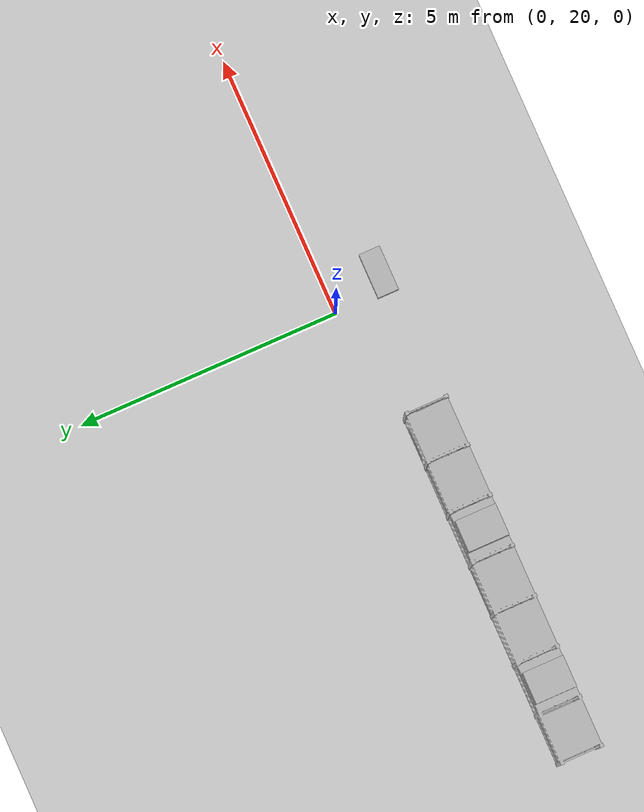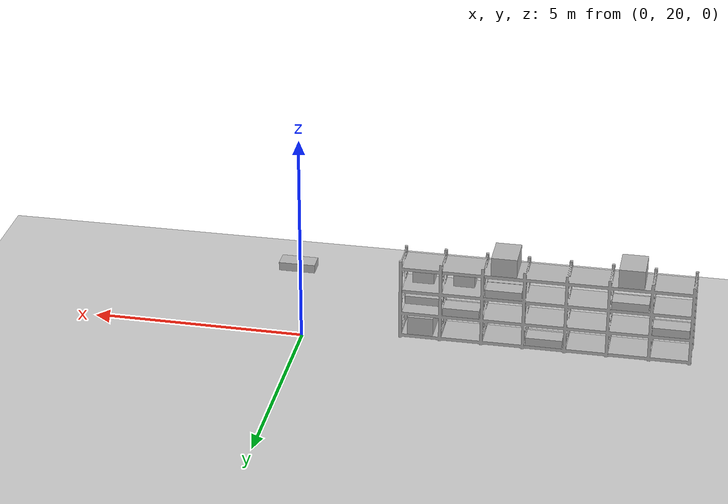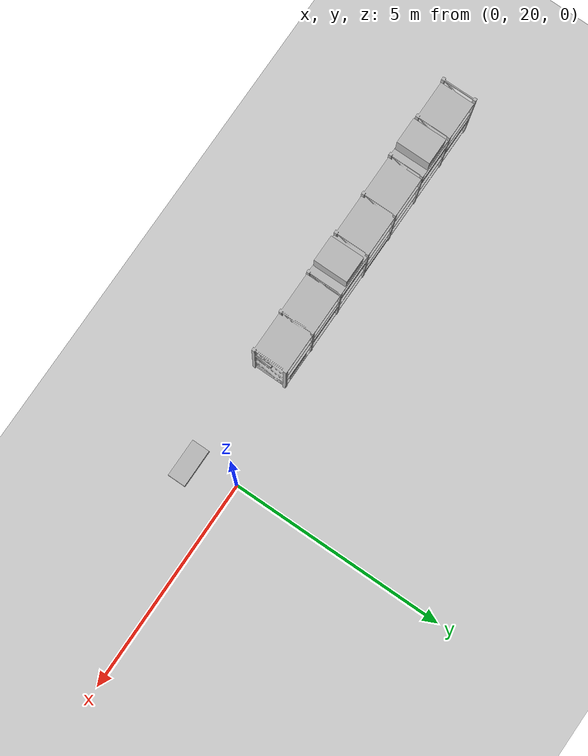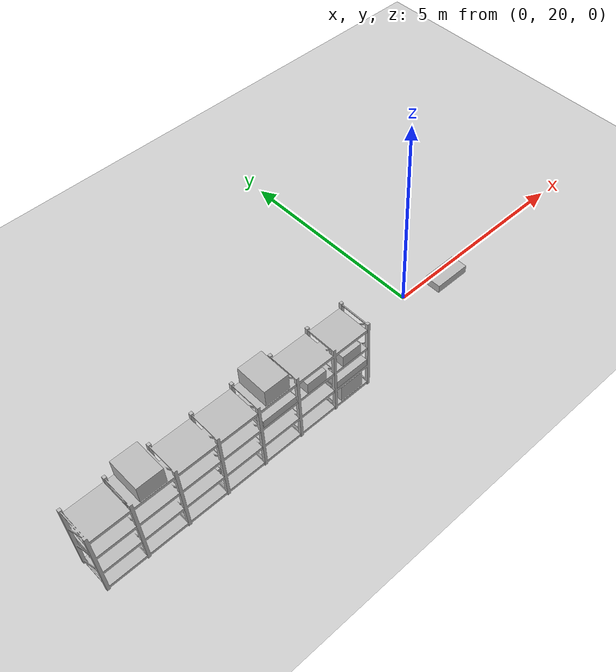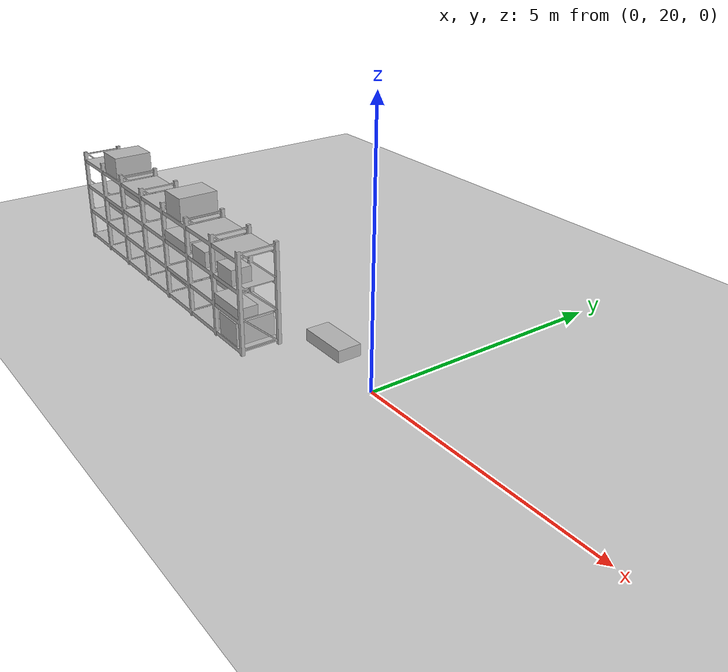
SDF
<sdf version="1.6">
 <world name="default">
  <model name="ground_plane">
   <static>1</static>
   <link name="link">
    <collision name="collision">
     <geometry><plane><normal>0 0 1</normal><size>100 100</size></plane></geometry>
     <surface><friction><ode><mu>100</mu><mu2>50</mu2></ode></friction></surface>
    </collision>
    <visual name="visual">
     <cast_shadows>0</cast_shadows>
     <geometry><plane><normal>0 0 1</normal><size>100 100</size></plane></geometry>
     <material>
      <script><uri>file://media/materials/scripts/gazebo.material</uri><name>Gazebo/Grey</name></script>
     </material>
    </visual>
   </link>
  </model>
  <include>
   <name>rack_D2_0</name>
   <uri>model://warehouse_rack_4lvl_7bay</uri>
   <pose>-5.6401 19.255 0 0 0 -1.5708</pose>
  </include>
  <model name="box_D_011">
   <pose>-8.5369 19.46 0.782 0 0 -1.5708</pose>
   <link name="link">
    <inertial>
     <mass>4.0</mass>
     <inertia><ixx>0.25417</ixx><iyy>0.06667</iyy><izz>0.29417</izz><ixy>0</ixy><ixz>0</ixz><iyz>0</iyz></inertia>
    </inertial>
    <collision name="collision">
     <geometry><box><size>0.4 0.85 0.2</size></box></geometry>
     <surface><friction><ode><mu>1.0</mu><mu2>1.0</mu2></ode></friction></surface>
    </collision>
    <visual name="visual">
     <cast_shadows>0</cast_shadows>
     <geometry><box><size>0.4 0.85 0.2</size></box></geometry>
     <material>
      <script>
       <uri>model://labeled_boxes/materials/scripts</uri>
       <uri>model://labeled_boxes/materials/textures</uri>
       <name>LabeledBox/D-011</name>
      </script>
     </material>
    </visual>
   </link>
  </model>
  <model name="box_D_015">
   <pose>-7.583 19.46 1.362 0 0 -1.5708</pose>
   <link name="link">
    <inertial>
     <mass>4.0</mass>
     <inertia><ixx>0.25417</ixx><iyy>0.06667</iyy><izz>0.29417</izz><ixy>0</ixy><ixz>0</ixz><iyz>0</iyz></inertia>
    </inertial>
    <collision name="collision">
     <geometry><box><size>0.4 0.85 0.2</size></box></geometry>
     <surface><friction><ode><mu>1.0</mu><mu2>1.0</mu2></ode></friction></surface>
    </collision>
    <visual name="visual">
     <cast_shadows>0</cast_shadows>
     <geometry><box><size>0.4 0.85 0.2</size></box></geometry>
     <material>
      <script>
       <uri>model://labeled_boxes/materials/scripts</uri>
       <uri>model://labeled_boxes/materials/textures</uri>
       <name>LabeledBox/D-015</name>
      </script>
     </material>
    </visual>
   </link>
  </model>
  <model name="box_D_016">
   <pose>-7.583 19.255 2.067 0 0 -1.5708</pose>
   <link name="link">
    <inertial>
     <mass>8.0</mass>
     <inertia><ixx>0.37500</ixx><iyy>0.54060</iyy><izz>0.64560</izz><ixy>0</ixy><ixz>0</ixz><iyz>0</iyz></inertia>
    </inertial>
    <collision name="collision">
     <geometry><box><size>0.78 0.6 0.45</size></box></geometry>
     <surface><friction><ode><mu>1.0</mu><mu2>1.0</mu2></ode></friction></surface>
    </collision>
    <visual name="visual">
     <cast_shadows>0</cast_shadows>
     <geometry><box><size>0.78 0.6 0.45</size></box></geometry>
     <material>
      <script>
       <uri>model://labeled_boxes/materials/scripts</uri>
       <uri>model://labeled_boxes/materials/textures</uri>
       <name>LabeledBox/D-016</name>
      </script>
     </material>
    </visual>
   </link>
  </model>
  <model name="box_D_018">
   <pose>-5.6401 19.46 0.202 0 0 -1.5708</pose>
   <link name="link">
    <inertial>
     <mass>4.0</mass>
     <inertia><ixx>0.25417</ixx><iyy>0.06667</iyy><izz>0.29417</izz><ixy>0</ixy><ixz>0</ixz><iyz>0</iyz></inertia>
    </inertial>
    <collision name="collision">
     <geometry><box><size>0.4 0.85 0.2</size></box></geometry>
     <surface><friction><ode><mu>1.0</mu><mu2>1.0</mu2></ode></friction></surface>
    </collision>
    <visual name="visual">
     <cast_shadows>0</cast_shadows>
     <geometry><box><size>0.4 0.85 0.2</size></box></geometry>
     <material>
      <script>
       <uri>model://labeled_boxes/materials/scripts</uri>
       <uri>model://labeled_boxes/materials/textures</uri>
       <name>LabeledBox/D-018</name>
      </script>
     </material>
    </visual>
   </link>
  </model>
  <model name="box_D_022">
   <pose>-4.6687 19.46 1.362 0 0 -1.5708</pose>
   <link name="link">
    <inertial>
     <mass>4.0</mass>
     <inertia><ixx>0.25417</ixx><iyy>0.06667</iyy><izz>0.29417</izz><ixy>0</ixy><ixz>0</ixz><iyz>0</iyz></inertia>
    </inertial>
    <collision name="collision">
     <geometry><box><size>0.4 0.85 0.2</size></box></geometry>
     <surface><friction><ode><mu>1.0</mu><mu2>1.0</mu2></ode></friction></surface>
    </collision>
    <visual name="visual">
     <cast_shadows>0</cast_shadows>
     <geometry><box><size>0.4 0.85 0.2</size></box></geometry>
     <material>
      <script>
       <uri>model://labeled_boxes/materials/scripts</uri>
       <uri>model://labeled_boxes/materials/textures</uri>
       <name>LabeledBox/D-022</name>
      </script>
     </material>
    </visual>
   </link>
  </model>
  <model name="box_D_023">
   <pose>-4.6687 19.05 1.362 0 0 -1.5708</pose>
   <link name="link">
    <inertial>
     <mass>4.0</mass>
     <inertia><ixx>0.25417</ixx><iyy>0.06667</iyy><izz>0.29417</izz><ixy>0</ixy><ixz>0</ixz><iyz>0</iyz></inertia>
    </inertial>
    <collision name="collision">
     <geometry><box><size>0.4 0.85 0.2</size></box></geometry>
     <surface><friction><ode><mu>1.0</mu><mu2>1.0</mu2></ode></friction></surface>
    </collision>
    <visual name="visual">
     <cast_shadows>0</cast_shadows>
     <geometry><box><size>0.4 0.85 0.2</size></box></geometry>
     <material>
      <script>
       <uri>model://labeled_boxes/materials/scripts</uri>
       <uri>model://labeled_boxes/materials/textures</uri>
       <name>LabeledBox/D-023</name>
      </script>
     </material>
    </visual>
   </link>
  </model>
  <model name="box_D_024">
   <pose>-4.6687 19.255 2.067 0 0 -1.5708</pose>
   <link name="link">
    <inertial>
     <mass>8.0</mass>
     <inertia><ixx>0.37500</ixx><iyy>0.54060</iyy><izz>0.64560</izz><ixy>0</ixy><ixz>0</ixz><iyz>0</iyz></inertia>
    </inertial>
    <collision name="collision">
     <geometry><box><size>0.78 0.6 0.45</size></box></geometry>
     <surface><friction><ode><mu>1.0</mu><mu2>1.0</mu2></ode></friction></surface>
    </collision>
    <visual name="visual">
     <cast_shadows>0</cast_shadows>
     <geometry><box><size>0.78 0.6 0.45</size></box></geometry>
     <material>
      <script>
       <uri>model://labeled_boxes/materials/scripts</uri>
       <uri>model://labeled_boxes/materials/textures</uri>
       <name>LabeledBox/D-024</name>
      </script>
     </material>
    </visual>
   </link>
  </model>
  <model name="box_D_025">
   <pose>-3.6972 19.46 0.782 0 0 -1.5708</pose>
   <link name="link">
    <inertial>
     <mass>4.0</mass>
     <inertia><ixx>0.25417</ixx><iyy>0.06667</iyy><izz>0.29417</izz><ixy>0</ixy><ixz>0</ixz><iyz>0</iyz></inertia>
    </inertial>
    <collision name="collision">
     <geometry><box><size>0.4 0.85 0.2</size></box></geometry>
     <surface><friction><ode><mu>1.0</mu><mu2>1.0</mu2></ode></friction></surface>
    </collision>
    <visual name="visual">
     <cast_shadows>0</cast_shadows>
     <geometry><box><size>0.4 0.85 0.2</size></box></geometry>
     <material>
      <script>
       <uri>model://labeled_boxes/materials/scripts</uri>
       <uri>model://labeled_boxes/materials/textures</uri>
       <name>LabeledBox/D-025</name>
      </script>
     </material>
    </visual>
   </link>
  </model>
  <model name="box_D_026">
   <pose>-3.6972 19.05 1.412 0 0 -1.5708</pose>
   <link name="link">
    <inertial>
     <mass>2.0</mass>
     <inertia><ixx>0.05667</ixx><iyy>0.04167</iyy><izz>0.06833</izz><ixy>0</ixy><ixz>0</ixz><iyz>0</iyz></inertia>
    </inertial>
    <collision name="collision">
     <geometry><box><size>0.4 0.5 0.3</size></box></geometry>
     <surface><friction><ode><mu>1.0</mu><mu2>1.0</mu2></ode></friction></surface>
    </collision>
    <visual name="visual">
     <cast_shadows>0</cast_shadows>
     <geometry><box><size>0.4 0.5 0.3</size></box></geometry>
     <material>
      <script>
       <uri>model://labeled_boxes/materials/scripts</uri>
       <uri>model://labeled_boxes/materials/textures</uri>
       <name>LabeledBox/D-026</name>
      </script>
     </material>
    </visual>
   </link>
  </model>
  <model name="box_D_027">
   <pose>-2.7433 19.255 0.327 0 0 -1.5708</pose>
   <link name="link">
    <inertial>
     <mass>8.0</mass>
     <inertia><ixx>0.37500</ixx><iyy>0.54060</iyy><izz>0.64560</izz><ixy>0</ixy><ixz>0</ixz><iyz>0</iyz></inertia>
    </inertial>
    <collision name="collision">
     <geometry><box><size>0.78 0.6 0.45</size></box></geometry>
     <surface><friction><ode><mu>1.0</mu><mu2>1.0</mu2></ode></friction></surface>
    </collision>
    <visual name="visual">
     <cast_shadows>0</cast_shadows>
     <geometry><box><size>0.78 0.6 0.45</size></box></geometry>
     <material>
      <script>
       <uri>model://labeled_boxes/materials/scripts</uri>
       <uri>model://labeled_boxes/materials/textures</uri>
       <name>LabeledBox/D-027</name>
      </script>
     </material>
    </visual>
   </link>
  </model>
  <model name="box_D_028">
   <pose>-2.7433 19.05 0.782 0 0 -1.5708</pose>
   <link name="link">
    <inertial>
     <mass>4.0</mass>
     <inertia><ixx>0.25417</ixx><iyy>0.06667</iyy><izz>0.29417</izz><ixy>0</ixy><ixz>0</ixz><iyz>0</iyz></inertia>
    </inertial>
    <collision name="collision">
     <geometry><box><size>0.4 0.85 0.2</size></box></geometry>
     <surface><friction><ode><mu>1.0</mu><mu2>1.0</mu2></ode></friction></surface>
    </collision>
    <visual name="visual">
     <cast_shadows>0</cast_shadows>
     <geometry><box><size>0.4 0.85 0.2</size></box></geometry>
     <material>
      <script>
       <uri>model://labeled_boxes/materials/scripts</uri>
       <uri>model://labeled_boxes/materials/textures</uri>
       <name>LabeledBox/D-028</name>
      </script>
     </material>
    </visual>
   </link>
  </model>
  <model name="box_D_029">
   <pose>-2.7433 19.05 1.412 0 0 -1.5708</pose>
   <link name="link">
    <inertial>
     <mass>2.0</mass>
     <inertia><ixx>0.05667</ixx><iyy>0.04167</iyy><izz>0.06833</izz><ixy>0</ixy><ixz>0</ixz><iyz>0</iyz></inertia>
    </inertial>
    <collision name="collision">
     <geometry><box><size>0.4 0.5 0.3</size></box></geometry>
     <surface><friction><ode><mu>1.0</mu><mu2>1.0</mu2></ode></friction></surface>
    </collision>
    <visual name="visual">
     <cast_shadows>0</cast_shadows>
     <geometry><box><size>0.4 0.5 0.3</size></box></geometry>
     <material>
      <script>
       <uri>model://labeled_boxes/materials/scripts</uri>
       <uri>model://labeled_boxes/materials/textures</uri>
       <name>LabeledBox/D-029</name>
      </script>
     </material>
    </visual>
   </link>
  </model>
  <model name="box_D_031">
   <pose>0.2631 19.05 1.362 0 0 -1.5708</pose>
   <link name="link">
    <inertial>
     <mass>4.0</mass>
     <inertia><ixx>0.25417</ixx><iyy>0.06667</iyy><izz>0.29417</izz><ixy>0</ixy><ixz>0</ixz><iyz>0</iyz></inertia>
    </inertial>
    <collision name="collision">
     <geometry><box><size>0.4 0.85 0.2</size></box></geometry>
     <surface><friction><ode><mu>1.0</mu><mu2>1.0</mu2></ode></friction></surface>
    </collision>
    <visual name="visual">
     <cast_shadows>0</cast_shadows>
     <geometry><box><size>0.4 0.85 0.2</size></box></geometry>
     <material>
      <script>
       <uri>model://labeled_boxes/materials/scripts</uri>
       <uri>model://labeled_boxes/materials/textures</uri>
       <name>LabeledBox/D-031</name>
      </script>
     </material>
    </visual>
   </link>
  </model>
 </world>
</sdf>
